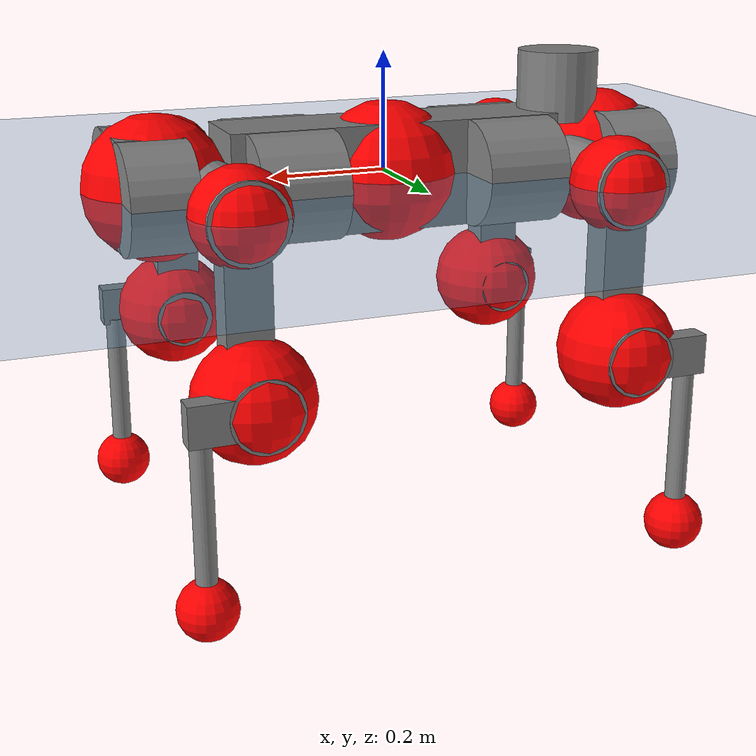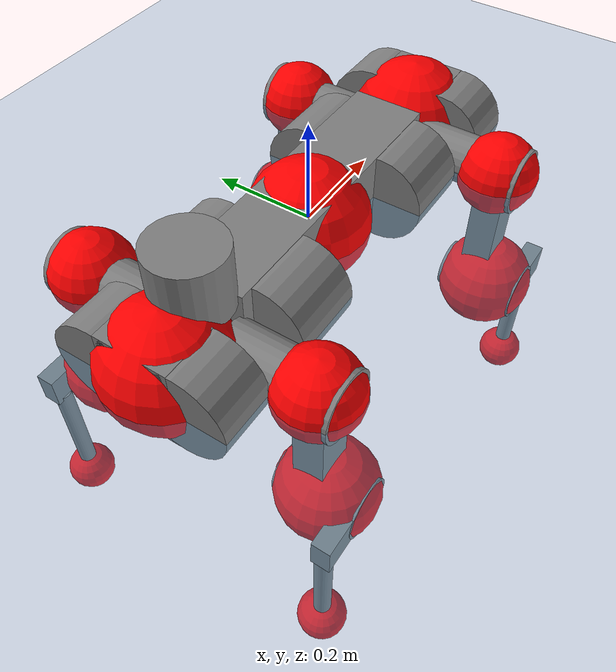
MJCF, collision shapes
<mujoco model="anymal_c">
  <compiler angle="radian" assetdir="assets" balanceinertia="true" inertiafromgeom="false"/>

  <option timestep="0.005" density="1.2" viscosity="2e-05"/>

  <size nkey="1"/>

  <visual>
    <quality shadowsize="8192"/>
    <map shadowclip="0.5"/>
  </visual>

  <default>
    <default class="/">
      <material specular="0" shininess="0.25"/>
      <geom contype="0" conaffinity="0" group="1" solref="-1000 -80"/>
      <site size="0.01 0.005 0.005" group="5"/>
      <general forcelimited="true" forcerange="-80 80" biastype="affine" gainprm="80" biasprm="0 -80 -2"/>
      <default class="anymal_c">
        <joint armature="0.01" damping="0.01" frictionloss="0.1"/>
        <default class="visual">
          <geom type="mesh" group="2"/>
          <default class="visual_zflip"/>
        </default>
        <default class="collision">
          <geom type="cylinder" group="3"/>
          <default class="foot">
            <geom size="0.03 0 0" type="sphere" condim="6" priority="1" friction="0.8 0.02 0.01" solimp="0.015 1 0.03"/>
          </default>
        </default>
      </default>
      <default class="reward_collision_sphere">
        <geom group="5" rgba="1 0 0 1"/>
      </default>
    </default>
  </default>

  <asset>
    <texture type="skybox" colorspace="auto" name="//unnamed_texture_0" builtin="gradient" rgb1="0.95 0.95 0.95" rgb2="0.95 0.95 0.95" width="100" height="600"/>
    <texture type="2d" colorspace="auto" name="texplane" builtin="checker" rgb1="0.345 0.575 0.748" rgb2="0.345 0.575 0.748" markrgb="1 1 1" width="512" height="512"/>
    <texture type="2d" colorspace="linear" name="base" file="base.png"/>
    <texture type="2d" colorspace="linear" name="top_shell" file="top_shell.png"/>
    <texture type="2d" colorspace="linear" name="bottom_shell" file="bottom_shell.png"/>
    <texture type="2d" colorspace="linear" name="remote" file="remote.png"/>
    <texture type="2d" colorspace="linear" name="hatch" file="hatch.png"/>
    <texture type="2d" colorspace="linear" name="handle" file="handle.png"/>
    <texture type="2d" colorspace="linear" name="face" file="face.png"/>
    <texture type="2d" colorspace="linear" name="battery" file="battery.png"/>
    <texture type="2d" colorspace="linear" name="lidar_cage" file="lidar_cage.png"/>
    <texture type="2d" colorspace="linear" name="depth_camera" file="depth_camera.png"/>
    <texture type="2d" colorspace="linear" name="wide_angle_camera" file="wide_angle_camera.png"/>
    <texture type="2d" colorspace="linear" name="lidar" file="lidar.png"/>
    <texture type="2d" colorspace="linear" name="drive" file="drive.png"/>
    <texture type="2d" colorspace="linear" name="hip_l" file="hip_l.png"/>
    <texture type="2d" colorspace="linear" name="shank_l" file="shank_l.png"/>
    <texture type="2d" colorspace="linear" name="foot" file="foot.png"/>
    <texture type="2d" colorspace="linear" name="thigh" file="thigh.png"/>
    <texture type="2d" colorspace="linear" name="shank_r" file="shank_r.png"/>
    <texture type="2d" colorspace="linear" name="hip_r" file="hip_r.png"/>
    <material name="MatPlane" class="/" texture="texplane" texuniform="true" texrepeat="2 2" specular="0.9" shininess="0.5"/>
    <material name="black_plastic" class="/" rgba="0.007 0.007 0.007 1"/>
    <material name="green" class="/" rgba="0.052 0.178 0.033 1"/>
    <material name="red" class="/" rgba="0.178 0.006 0.005 1"/>
    <material name="yellow" class="/" rgba="0.178 0.119 0.006 1"/>
    <material name="lwl" class="/" rgba="0.8 0.8 0.8 1"/>
    <material name="base" class="/" texture="base"/>
    <material name="top_shell" class="/" texture="top_shell"/>
    <material name="bottom_shell" class="/" texture="bottom_shell"/>
    <material name="hip_l" class="/" texture="hip_l"/>
    <material name="thigh" class="/" texture="thigh"/>
    <material name="shank_l" class="/" texture="shank_l"/>
    <material name="foot" class="/" texture="foot"/>
    <material name="hip_r" class="/" texture="hip_r"/>
    <material name="shank" class="/" texture="shank_r"/>
    <material name="hatch" class="/" texture="hatch"/>
    <material name="remote" class="/" texture="remote"/>
    <material name="handle" class="/" texture="handle"/>
    <material name="face" class="/" texture="face"/>
    <material name="depth_camera" class="/" texture="depth_camera"/>
    <material name="wide_angle_camera" class="/" texture="wide_angle_camera"/>
    <material name="battery" class="/" texture="battery"/>
    <material name="lidar_cage" class="/" texture="lidar_cage"/>
    <material name="lidar" class="/" texture="lidar"/>
    <material name="drive" class="/" texture="drive"/>
    <mesh name="base_0" class="/" file="base_0.obj"/>
    <mesh name="base_1" class="/" file="base_1.obj"/>
    <mesh name="base_2" class="/" file="base_2.obj"/>
    <mesh name="base_3" class="/" file="base_3.obj"/>
    <mesh name="base_4" class="/" file="base_4.obj"/>
    <mesh name="base_5" class="/" file="base_5.obj"/>
    <mesh name="top_shell" class="/" file="top_shell.obj"/>
    <mesh name="bottom_shell" class="/" file="bottom_shell.obj"/>
    <mesh name="remote" class="/" file="remote.obj"/>
    <mesh name="handle" class="/" file="handle.obj"/>
    <mesh name="face" class="/" file="face.obj"/>
    <mesh name="wide_angle_camera" class="/" file="wide_angle_camera.obj"/>
    <mesh name="depth_camera" class="/" file="depth_camera.obj"/>
    <mesh name="battery" class="/" file="battery.obj"/>
    <mesh name="lidar_cage" class="/" file="lidar_cage.obj"/>
    <mesh name="lidar" class="/" file="lidar.obj"/>
    <mesh name="drive" class="/" file="drive.obj"/>
    <mesh name="hip_l" class="/" file="hip_l.obj"/>
    <mesh name="thigh" class="/" file="thigh.obj"/>
    <mesh name="shank_l" class="/" file="shank_l.obj"/>
    <mesh name="foot" class="/" file="foot.obj"/>
    <mesh name="hip_r" class="/" file="hip_r.obj"/>
    <mesh name="hatch" class="/" file="hatch.obj"/>
    <mesh name="shank_r" class="/" file="shank_r.obj"/>
  </asset>

  <worldbody>
    <geom name="floor" class="/" size="100 100 0.125" type="plane" group="0" material="MatPlane"/>
    <light name="toplight_shadow" class="/" pos="0 0 5" dir="0.0990148 0.0990148 -0.990148" type="directional" ambient="0.04 0.04 0.04" diffuse="0.55 0.55 0.55" specular="0.12 0.12 0.12"/>
    <light name="toplight_fill" class="/" pos="0 0 5" dir="0.0990148 0.0990148 -0.990148" type="directional" castshadow="false" ambient="0.04 0.04 0.04" diffuse="0.3 0.3 0.3" specular="0.08 0.08 0.08"/>
    <body name="trunk" childclass="anymal_c" pos="-0.00535368 -0.00126988 -0.00106867" quat="0.999998 0.00166099 -0.00012595 0.00112403">
      <inertial pos="0.00686606 0.00103124 0.0449955" quat="0.502876 0.48923 0.504649 0.503089" mass="20.5924" diaginertia="0.349039 1.13884 0.201519"/>
      <joint name="//unnamed_joint_0" type="free" armature="0" damping="0" frictionloss="0"/>
      <geom name="//unnamed_geom_1" class="visual" material="green" mesh="base_0"/>
      <geom name="//unnamed_geom_2" class="visual" material="yellow" mesh="base_1"/>
      <geom name="//unnamed_geom_3" class="visual" material="red" mesh="base_2"/>
      <geom name="//unnamed_geom_4" class="visual" material="black_plastic" mesh="base_3"/>
      <geom name="//unnamed_geom_5" class="visual" material="lwl" mesh="base_4"/>
      <geom name="//unnamed_geom_6" class="visual" material="base" mesh="base_5"/>
      <geom name="trunk_1" class="collision" size="0.288664 0.0696775 0.0895854" type="box"/>
      <geom name="trunk_2" class="collision" size="0.0895854 0.072166" pos="0.19202 0.0788128 0" quat="0.707107 0 0.707107 0"/>
      <geom name="trunk_3" class="collision" size="0.0895854 0.072166" pos="-0.19202 0.0788128 0" quat="0.707107 0 0.707107 0"/>
      <geom name="trunk_4" class="collision" size="0.0895854 0.072166" pos="0.19202 -0.0788128 0" quat="0.707107 0 0.707107 0"/>
      <geom name="trunk_5" class="collision" size="0.0895854 0.072166" pos="-0.19202 -0.0788128 0" quat="0.707107 0 0.707107 0"/>
      <geom name="//unnamed_geom_12" class="visual" material="top_shell" mesh="top_shell"/>
      <geom name="//unnamed_geom_13" class="visual" material="bottom_shell" mesh="bottom_shell"/>
      <geom name="//unnamed_geom_14" class="visual" material="remote" mesh="remote"/>
      <geom name="//unnamed_geom_15" class="visual" material="handle" mesh="handle"/>
      <geom name="//unnamed_geom_16" class="visual" pos="0.365942 0 0" quat="1 0 0 0" material="face" mesh="face"/>
      <geom name="trunk_6" class="collision" size="0.0547466 0.0696775 0.0895854" pos="0.414499 0 0" type="box"/>
      <geom name="//unnamed_geom_18" class="collision" size="0.0895854 0.0547466" pos="0.414499 0.0788128 0" quat="0.707107 0 0.707107 0"/>
      <geom name="//unnamed_geom_19" class="collision" size="0.0895854 0.0547466" pos="0.414499 -0.0788128 0" quat="0.707107 0 0.707107 0"/>
      <geom name="//unnamed_geom_20" class="visual" pos="0.407572 0 -0.0292598" quat="0.965926 0 0.258819 0" material="depth_camera" mesh="depth_camera"/>
      <geom name="//unnamed_geom_21" class="visual" pos="0.452903 0 0.0146321" material="wide_angle_camera" mesh="wide_angle_camera"/>
      <geom name="//unnamed_geom_22" class="visual_zflip" pos="-0.365942 0 0" quat="0 0 0 1" material="face" mesh="face"/>
      <geom name="trunk_7" class="collision" size="0.0547466 0.0696775 0.0895854" pos="-0.414499 0 0" quat="0 0 0 1" type="box"/>
      <geom name="//unnamed_geom_24" class="collision" size="0.0895854 0.0547466" pos="-0.414499 -0.0788128 0" quat="0 -0.707107 0 0.707107"/>
      <geom name="//unnamed_geom_25" class="collision" size="0.0895854 0.0547466" pos="-0.414499 0.0788128 0" quat="0 -0.707107 0 0.707107"/>
      <geom name="//unnamed_geom_26" class="visual" pos="-0.407572 0 -0.0292598" quat="0 -0.258819 0 0.965926" material="depth_camera" mesh="depth_camera"/>
      <geom name="//unnamed_geom_27" class="visual_zflip" pos="-0.452903 0 0.0146321" quat="0 0 0 1" material="wide_angle_camera" mesh="wide_angle_camera"/>
      <geom name="//unnamed_geom_28" class="visual" material="battery" mesh="battery"/>
      <geom name="//unnamed_geom_29" class="visual" pos="0 0.0892792 0.0276756" quat="0.683013 -0.183013 0.183013 0.683013" material="depth_camera" mesh="depth_camera"/>
      <geom name="//unnamed_geom_30" class="visual" pos="0 -0.0892792 0.0276756" quat="0.683013 0.183013 0.183013 -0.683013" material="depth_camera" mesh="depth_camera"/>
      <geom name="//unnamed_geom_31" class="visual" pos="-0.321358 0 0.0718412" quat="1 0 0 0" material="lidar_cage" mesh="lidar_cage"/>
      <geom name="trunk_8" class="collision" size="0.0696775 0.0597236" pos="-0.321358 0 0.130487"/>
      <geom name="//unnamed_geom_33" class="visual" pos="-0.321358 9.5486e-05 0.138991" quat="0.707107 0 0 -0.707107" material="lidar" mesh="lidar"/>
      <geom name="//unnamed_geom_34" class="visual" pos="0.264767 0.117041 2.56105e-09" quat="0.258819 0.965926 0 0" material="drive" mesh="drive"/>
      <geom name="//unnamed_geom_35" class="visual" pos="0.264767 -0.117041 -2.56105e-09" quat="0.258819 -0.965926 0 0" material="drive" mesh="drive"/>
      <geom name="//unnamed_geom_36" class="visual" pos="-0.264767 0.117041 -2.56105e-09" quat="0 0 0.965926 -0.258819" material="drive" mesh="drive"/>
      <geom name="//unnamed_geom_37" class="visual" pos="-0.264767 -0.117041 2.56105e-09" quat="0 0 -0.965926 -0.258819" material="drive" mesh="drive"/>
      <geom name="//unnamed_geom_38" class="visual" pos="0.102411 0 0.0713525" quat="1 0 0 0" material="hatch" mesh="hatch"/>
      <geom name="//unnamed_geom_39" class="reward_collision_sphere" size="0.119447"/>
      <geom name="//unnamed_geom_40" class="reward_collision_sphere" size="0.119447" pos="0.397283 0 0"/>
      <geom name="//unnamed_geom_41" class="reward_collision_sphere" size="0.119447" pos="-0.397283 0 0"/>
      <site name="imu" pos="0.212137 0.0115682 0.0271535" size="0.00995393"/>
      <camera name="track" pos="0 -2.25179 0" quat="0.707107 0.707107 0 0" mode="trackcom"/>
      <camera name="ego_camera" pos="0.397283 0 -0.0390972" quat="-0.5 -0.5 0.5 0.5"/>
      <body name="LF_HIP" pos="0.265621 0.115217 0.00105231" quat="0.258563 0.965994 -0.000178787 -0.00053515">
        <inertial pos="0.0527606 -0.0157297 -0.0102331" quat="-0.124601 0.705295 -0.140847 0.683517" mass="2.79034" diaginertia="0.00301926 0.00925492 0.00293275"/>
        <joint name="LF_HAA" pos="0 0 0" axis="0.99968 -0.0093852 -0.0234701" range="-0.817506 0.445428" armature="0.0103582" damping="0.0141877" frictionloss="0.0965964"/>
        <geom name="//unnamed_geom_42" class="visual" pos="0 0.000150655 -2.47449e-05" quat="0.258819 -0.965926 0 0" material="hip_l" mesh="hip_l"/>
        <geom name="//unnamed_geom_43" class="visual" pos="0.0528828 -0.0672261 -0.0377148" quat="0.183013 -0.683013 0.683013 0.183013" material="drive" mesh="drive"/>
        <geom name="//unnamed_geom_44" class="collision" size="0.0497697 0.0696775" pos="0.0528828 -0.0134655 -0.00674916" quat="-0.353553 -0.612372 0.612372 -0.353553"/>
        <body name="LF_THIGH" pos="0.0539067 -0.0822943 -0.0404509" quat="0.183809 -0.682333 0.683653 0.182359">
          <inertial pos="0.0260641 0.000519709 -0.236312" quat="0.993137 -0.00503892 -0.0802762 0.0849127" mass="3.0366" diaginertia="0.016687 0.0559246 0.00352437"/>
          <joint name="LF_HFE" pos="0 0 0" axis="0.999959 -0.000555352 0.00899964" stiffness="0.027454" range="-3.11927 3.14853" armature="0.00921357" damping="0.0038564" frictionloss="0.0895548"/>
          <geom name="//unnamed_geom_45" class="visual" pos="-0.00483565 -7.61985e-06 0" quat="0.707107 0 0 -0.707107" material="thigh" mesh="thigh"/>
          <geom name="//unnamed_geom_46" class="collision" size="0.0647006 0.0398157" pos="0.0353141 0 0" quat="0.5 0.5 -0.5 -0.5"/>
          <geom name="//unnamed_geom_47" class="collision" size="0.0373272 0.0298618 0.140663" pos="0.0264855 0 -0.138125" quat="0.707107 0 0 -0.707107" type="box"/>
          <geom name="//unnamed_geom_48" class="visual" pos="0.08855 0 -0.278568" quat="1 0 0 0" material="drive" mesh="drive"/>
          <geom name="//unnamed_geom_49" class="collision" size="0.0497697 0.0696775" pos="0.0267504 0 -0.278568" quat="0.707107 0 0.707107 0"/>
          <geom name="//unnamed_geom_50" class="reward_collision_sphere" size="0.0796314" pos="0.0220713 0 0"/>
          <body name="LF_SHANK" pos="0.0912366 0.00385773 -0.280233" quat="1 0.000114526 4.58487e-05 -1.34504e-05">
            <inertial pos="0.0072307 -0.0680231 -0.0795925" quat="0.993342 -0.113666 0.00345861 -0.0184382" mass="0.575937" diaginertia="0.00506224 0.0154366 0.000954122"/>
            <joint name="LF_KFE" pos="0 0 0" axis="0.999946 0.00460333 -0.00935307" range="-3.06282 3.15835" armature="0.0102949" damping="0.0181193" frictionloss="0.102629"/>
            <geom name="//unnamed_geom_51" class="visual" pos="-0.0015768 -0.00840757 0" quat="0.707107 0 0 -0.707107" material="shank_l" mesh="shank_l"/>
            <geom name="LF_kfe_act" class="collision" size="0.0597236 0.0199079" pos="0.017657 0 0" quat="0.5 0.5 -0.5 -0.5"/>
            <geom name="//unnamed_geom_53" class="collision" size="0.0572341 0.0335945 0.0189125" pos="0.017657 -0.0647379 0" quat="0.5 0.5 -0.5 -0.5" type="box"/>
            <geom name="//unnamed_geom_54" class="visual" pos="0.0115216 -0.101732 -0.330342" quat="0.382683 0 0 -0.92388" material="foot" mesh="foot"/>
            <geom name="LF_calf" class="collision" size="0.0174194 0.140601" pos="0.0115212 -0.0990226 -0.165171" quat="0.707107 0 0 -0.707107"/>
            <geom name="LF_foot" class="foot" size="0.0209317" pos="0.0115212 -0.0990226 -0.30835" quat="0.707107 0 0 -0.707107"/>
            <geom name="//unnamed_geom_57" class="reward_collision_sphere" size="0.0995393" pos="-0.0441426 0 0"/>
            <geom name="//unnamed_geom_58" class="reward_collision_sphere" size="0.0497697" pos="0.0115212 -0.0990226 -0.30835"/>
            <site name="LF_foot" class="foot" pos="0.0115212 -0.0990226 -0.30835" quat="0.707107 0 0 -0.707107" size="0.00995393"/>
          </body>
        </body>
      </body>
      <body name="RF_HIP" pos="0.267844 -0.116727 0.00411937" quat="0.258959 -0.965888 0.000632142 -0.000692407">
        <inertial pos="0.0508203 0.0205591 -0.00741677" quat="0.128786 0.676253 0.138685 0.711943" mass="2.77649" diaginertia="0.00319381 0.0088797 0.00294382"/>
        <joint name="RF_HAA" pos="0 0 0" axis="0.999998 0.00101533 -0.00185081" range="-0.451098 0.724761" armature="0.0110219" damping="0.0188798" frictionloss="0.11334"/>
        <geom name="//unnamed_geom_59" class="visual" pos="0 -0.000150654 -2.47448e-05" quat="0.258819 0.965926 0 0" material="hip_r" mesh="hip_r"/>
        <geom name="//unnamed_geom_60" class="visual" pos="0.0528828 0.0672261 -0.0377148" quat="0.183013 0.683013 0.683013 -0.183013" material="drive" mesh="drive"/>
        <geom name="//unnamed_geom_61" class="collision" size="0.0497697 0.0696775" pos="0.0528828 0.0134655 -0.00674916" quat="-0.353553 0.612372 0.612372 0.353553"/>
        <body name="RF_THIGH" pos="0.0523654 0.0870653 -0.0421847" quat="0.183343 0.682782 0.683065 -0.183351">
          <inertial pos="0.0275959 0.00175432 -0.241576" quat="0.992843 -0.00537901 -0.0782161 0.0900881" mass="2.98206" diaginertia="0.0157012 0.0519929 0.00357004"/>
          <joint name="RF_HFE" pos="0 0 0" axis="0.999992 -0.00338546 0.0019306" stiffness="0.00224242" range="-3.1893 3.09548" armature="0.00979194" damping="0.000858049" frictionloss="0.106141"/>
          <geom name="//unnamed_geom_62" class="visual" pos="-0.00483565 -7.61985e-06 0" quat="0.707107 0 0 -0.707107" material="thigh" mesh="thigh"/>
          <geom name="//unnamed_geom_63" class="collision" size="0.0647006 0.0398157" pos="0.0353141 0 0" quat="0.5 0.5 0.5 0.5"/>
          <geom name="//unnamed_geom_64" class="collision" size="0.0373272 0.0298618 0.140663" pos="0.0264855 0 -0.138125" quat="0.707107 0 0 0.707107" type="box"/>
          <geom name="//unnamed_geom_65" class="visual" pos="0.08855 0 -0.278568" quat="1 0 0 0" material="drive" mesh="drive"/>
          <geom name="//unnamed_geom_66" class="collision" size="0.0497697 0.0696775" pos="0.0267504 0 -0.278568" quat="0.707107 0 0.707107 0"/>
          <geom name="//unnamed_geom_67" class="reward_collision_sphere" size="0.0796314" pos="0.0220713 0 0"/>
          <body name="RF_SHANK" pos="0.0896173 0.00221108 -0.280867" quat="1 5.69529e-06 1.6062e-07 -2.17996e-05">
            <inertial pos="0.00589537 0.0700698 -0.0790096" quat="0.993846 0.109651 -0.00996928 0.0121127" mass="0.578476" diaginertia="0.00547626 0.0168236 0.00101982"/>
            <joint name="RF_KFE" pos="0 0 0" axis="0.999754 0.00214659 -0.0220772" stiffness="0.0126524" range="-3.09267 3.1171" armature="0.00886219" damping="0" frictionloss="0.0913607"/>
            <geom name="//unnamed_geom_68" class="visual" pos="-0.00157679 0.00840755 0" quat="0.707107 0 0 0.707107" material="shank" mesh="shank_r"/>
            <geom name="RF_kfe_act" class="collision" size="0.0597236 0.0199079" pos="0.017657 0 0" quat="0.5 0.5 0.5 0.5"/>
            <geom name="//unnamed_geom_70" class="collision" size="0.0572341 0.0335945 0.0189125" pos="0.017657 0.0647379 0" quat="0.5 0.5 0.5 0.5" type="box"/>
            <geom name="//unnamed_geom_71" class="visual" pos="0.0115208 0.101732 -0.330342" quat="0.382683 0 0 0.92388" material="foot" mesh="foot"/>
            <geom name="RF_calf" class="collision" size="0.0174194 0.140601" pos="0.0115212 0.0990226 -0.165171" quat="0.707107 0 0 0.707107"/>
            <geom name="RF_foot" class="foot" size="0.0261187" pos="0.0115212 0.0990226 -0.30835" quat="0.707107 0 0 0.707107"/>
            <geom name="//unnamed_geom_74" class="reward_collision_sphere" size="0.0995393" pos="-0.0441426 0 0"/>
            <geom name="//unnamed_geom_75" class="reward_collision_sphere" size="0.0497697" pos="0.0115212 0.0990226 -0.30835"/>
            <site name="RF_foot" class="foot" pos="0.0115212 0.0990226 -0.30835" quat="0.707107 0 0 0.707107" size="0.00995393"/>
          </body>
        </body>
      </body>
      <body name="LH_HIP" pos="-0.263042 0.11732 0.00133666" quat="-0.00010989 0.00020227 0.965921 -0.258838">
        <inertial pos="0.0519669 0.0126861 -0.00666669" quat="0.15011 0.691197 0.140082 0.692885" mass="2.67785" diaginertia="0.00330639 0.00917744 0.0028872"/>
        <joint name="LH_HAA" pos="0 0 0" axis="0.999991 0.00164499 -0.0038456" range="-0.540819 0.721372" armature="0.0110445" damping="0" frictionloss="0.0825754"/>
        <geom name="//unnamed_geom_76" class="visual" pos="0 -0.000150654 -2.47448e-05" quat="-0.258819 -0.965926 0 0" material="hip_r" mesh="hip_r"/>
        <geom name="//unnamed_geom_77" class="visual" pos="0.0528828 0.0672261 -0.0377148" quat="0.183013 0.683013 0.683013 -0.183013" material="drive" mesh="drive"/>
        <geom name="//unnamed_geom_78" class="collision" size="0.0497697 0.0696775" pos="0.0528828 0.0134655 -0.00674916" quat="-0.353553 0.612372 0.612372 0.353553"/>
        <body name="LH_THIGH" pos="0.0511451 0.0850061 -0.0442384" quat="0.184167 0.683341 0.682577 -0.182255">
          <inertial pos="0.0276218 0.00017748 -0.237565" quat="0.992744 0.00433577 -0.0828203 0.0870664" mass="2.94116" diaginertia="0.0168412 0.0573752 0.00381605"/>
          <joint name="LH_HFE" pos="0 0 0" axis="0.999999 -0.00123401 -0.000399398" range="-3.12495 3.16551" armature="0.00916678" damping="0.00402017" frictionloss="0.101279"/>
          <geom name="//unnamed_geom_79" class="visual" pos="-0.00483565 -7.61985e-06 0" quat="0.707107 0 0 -0.707107" material="thigh" mesh="thigh"/>
          <geom name="//unnamed_geom_80" class="collision" size="0.0647006 0.0398157" pos="0.0353141 0 0" quat="0.5 0.5 -0.5 -0.5"/>
          <geom name="//unnamed_geom_81" class="collision" size="0.0373272 0.0298618 0.140663" pos="0.0264855 0 -0.138125" quat="0.707107 0 0 -0.707107" type="box"/>
          <geom name="//unnamed_geom_82" class="visual" pos="0.08855 0 -0.278568" quat="1 0 0 0" material="drive" mesh="drive"/>
          <geom name="//unnamed_geom_83" class="collision" size="0.0497697 0.0696775" pos="0.0267504 0 -0.278568" quat="0.707107 0 0.707107 0"/>
          <geom name="//unnamed_geom_84" class="reward_collision_sphere" size="0.0796314" pos="0.0220713 0 0"/>
          <body name="LH_SHANK" pos="0.0886043 -0.000627206 -0.27473" quat="1 -0.000247944 0.000203372 0.000887413">
            <inertial pos="0.00280204 0.0639878 -0.0776638" quat="0.992631 0.118633 -0.00183769 0.024625" mass="0.597307" diaginertia="0.00556446 0.0173598 0.00109004"/>
            <joint name="LH_KFE" pos="0 0 0" axis="0.999945 0.00815605 -0.00659655" stiffness="0.0255614" range="-3.13676 3.16528" armature="0.010088" damping="0.00990345" frictionloss="0.076244"/>
            <geom name="//unnamed_geom_85" class="visual" pos="-0.00157679 0.00840755 0" quat="-0.707107 0 0 -0.707107" material="shank" mesh="shank_r"/>
            <geom name="LH_kfe_act" class="collision" size="0.0597236 0.0199079" pos="0.017657 0 0" quat="0.5 0.5 -0.5 -0.5"/>
            <geom name="//unnamed_geom_87" class="collision" size="0.0572341 0.0335945 0.0189125" pos="0.017657 0.0647379 0" quat="0.5 0.5 -0.5 -0.5" type="box"/>
            <geom name="//unnamed_geom_88" class="visual" pos="0.0115208 0.101732 -0.330342" quat="-0.382683 0 0 -0.92388" material="foot" mesh="foot"/>
            <geom name="LH_calf" class="collision" size="0.0174194 0.140601" pos="0.0115212 0.0990226 -0.165171" quat="0.707107 0 0 -0.707107"/>
            <geom name="LH_foot" class="foot" size="0.0303593" pos="0.0115212 0.0990226 -0.30835" quat="0.707107 0 0 -0.707107"/>
            <geom name="//unnamed_geom_91" class="reward_collision_sphere" size="0.0995393" pos="-0.0441426 0 0"/>
            <geom name="//unnamed_geom_92" class="reward_collision_sphere" size="0.0497697" pos="0.0115212 0.0990226 -0.30835"/>
            <site name="LH_foot" class="foot" pos="0.0115212 0.0990226 -0.30835" quat="0.707107 0 0 -0.707107" size="0.00995393"/>
          </body>
        </body>
      </body>
      <body name="RH_HIP" pos="-0.262773 -0.117145 0.00214844" quat="-0.00213835 -0.000548542 -0.965977 -0.258618">
        <inertial pos="0.0452615 -0.0187409 -0.00348749" quat="-0.132029 0.70735 -0.136652 0.680846" mass="2.7349" diaginertia="0.00312913 0.0087953 0.00285545"/>
        <joint name="RH_HAA" pos="0 0 0" axis="0.999678 0.00900895 -0.0237219" range="-0.682911 0.5425" armature="0.00937953" damping="0.00425159" frictionloss="0.111885"/>
        <geom name="//unnamed_geom_93" class="visual" pos="0 0.000150655 -2.47449e-05" quat="-0.258819 0.965926 0 0" material="hip_l" mesh="hip_l"/>
        <geom name="//unnamed_geom_94" class="visual" pos="0.0528828 -0.0672261 -0.0377148" quat="-0.183013 0.683013 -0.683013 -0.183013" material="drive" mesh="drive"/>
        <geom name="//unnamed_geom_95" class="collision" size="0.0497697 0.0696775" pos="0.0528828 -0.0134655 -0.00674916" quat="0.353553 0.612372 -0.612372 0.353553"/>
        <body name="RH_THIGH" pos="0.0504098 -0.0782399 -0.0363515" quat="-0.183045 0.682978 -0.68301 -0.183118">
          <inertial pos="0.0255356 -0.000955697 -0.240326" quat="0.993337 -0.00692169 -0.0781685 0.0843946" mass="3.14546" diaginertia="0.0157779 0.053836 0.00370676"/>
          <joint name="RH_HFE" pos="0 0 0" axis="0.999935 0.00674036 0.0091883" stiffness="0.00113063" range="-3.13857 3.08277" armature="0.00902029" damping="0.00587869" frictionloss="0.111927"/>
          <geom name="//unnamed_geom_96" class="visual" pos="-0.00483565 -7.61985e-06 0" quat="0.707107 0 0 -0.707107" material="thigh" mesh="thigh"/>
          <geom name="//unnamed_geom_97" class="collision" size="0.0647006 0.0398157" pos="0.0353141 0 0" quat="0.5 0.5 0.5 0.5"/>
          <geom name="//unnamed_geom_98" class="collision" size="0.0373272 0.0298618 0.140663" pos="0.0264855 0 -0.138125" quat="0.707107 0 0 0.707107" type="box"/>
          <geom name="//unnamed_geom_99" class="visual" pos="0.08855 0 -0.278568" quat="1 0 0 0" material="drive" mesh="drive"/>
          <geom name="//unnamed_geom_100" class="collision" size="0.0497697 0.0696775" pos="0.0267504 0 -0.278568" quat="0.707107 0 0.707107 0"/>
          <geom name="//unnamed_geom_101" class="reward_collision_sphere" size="0.0796314" pos="0.0220713 0 0"/>
          <body name="RH_SHANK" pos="0.0874074 0.00275339 -0.276758" quat="1 -1.05987e-05 -1.76763e-06 -9.07552e-07">
            <inertial pos="0.00619909 -0.0664775 -0.0789752" quat="0.992882 -0.116155 -0.0032179 -0.0261492" mass="0.57507" diaginertia="0.00561707 0.0168407 0.000975983"/>
            <joint name="RH_KFE" pos="0 0 0" axis="0.999863 0.0109116 0.0124202" range="-3.16407 3.14772" armature="0.00879095" damping="0" frictionloss="0.087415"/>
            <geom name="//unnamed_geom_102" class="visual" pos="-0.0015768 -0.00840757 0" quat="0.707107 0 0 -0.707107" material="shank_l" mesh="shank_l"/>
            <geom name="RH_kfe_act" class="collision" size="0.0597236 0.0199079" pos="0.017657 0 0" quat="0.5 0.5 0.5 0.5"/>
            <geom name="//unnamed_geom_104" class="collision" size="0.0572341 0.0335945 0.0189125" pos="0.017657 -0.0647379 0" quat="0.5 0.5 0.5 0.5" type="box"/>
            <geom name="//unnamed_geom_105" class="visual" pos="0.0115216 -0.101732 -0.330342" quat="0.382683 0 0 -0.92388" material="foot" mesh="foot"/>
            <geom name="RH_calf" class="collision" size="0.0174194 0.140601" pos="0.0115212 -0.0990226 -0.165171" quat="0.707107 0 0 0.707107"/>
            <geom name="RH_foot" class="foot" size="0.0334094" pos="0.0115212 -0.0990226 -0.30835" quat="0.707107 0 0 0.707107"/>
            <geom name="//unnamed_geom_108" class="reward_collision_sphere" size="0.0995393" pos="-0.0441426 0 0"/>
            <geom name="//unnamed_geom_109" class="reward_collision_sphere" size="0.0497697" pos="0.0115212 -0.0990226 -0.30835"/>
            <site name="RH_foot" class="foot" pos="0.0115212 -0.0990226 -0.30835" quat="0.707107 0 0 0.707107" size="0.00995393"/>
          </body>
        </body>
      </body>
    </body>
  </worldbody>

  <contact>
    <pair class="/" geom1="floor" geom2="LF_foot" name="//unnamed_contact_0"/>
    <pair class="/" geom1="floor" geom2="RF_foot" name="//unnamed_contact_1"/>
    <pair class="/" geom1="floor" geom2="LH_foot" name="//unnamed_contact_2"/>
    <pair class="/" geom1="floor" geom2="RH_foot" name="//unnamed_contact_3"/>
  </contact>

  <actuator>
    <general name="LF_HAA" class="/" joint="LF_HAA" forcerange="-79.9039 79.9039" gainprm="80.7361" biasprm="0 -80.7361 -2.14548"/>
    <general name="LF_HFE" class="/" joint="LF_HFE" forcerange="-77.9109 77.9109" gainprm="80.7361" biasprm="0 -80.7361 -2.14548"/>
    <general name="LF_KFE" class="/" joint="LF_KFE" forcerange="-75.0909 75.0909" gainprm="80.7361" biasprm="0 -80.7361 -2.14548"/>
    <general name="RF_HAA" class="/" joint="RF_HAA" forcerange="-81.2176 81.2176" gainprm="80.7361" biasprm="0 -80.7361 -2.14548"/>
    <general name="RF_HFE" class="/" joint="RF_HFE" forcerange="-82.446 82.446" gainprm="80.7361" biasprm="0 -80.7361 -2.14548"/>
    <general name="RF_KFE" class="/" joint="RF_KFE" forcerange="-82.0518 82.0518" gainprm="80.7361" biasprm="0 -80.7361 -2.14548"/>
    <general name="LH_HAA" class="/" joint="LH_HAA" forcerange="-66.4496 66.4496" gainprm="80.7361" biasprm="0 -80.7361 -2.14548"/>
    <general name="LH_HFE" class="/" joint="LH_HFE" forcerange="-77.4648 77.4648" gainprm="80.7361" biasprm="0 -80.7361 -2.14548"/>
    <general name="LH_KFE" class="/" joint="LH_KFE" forcerange="-92.7731 92.7731" gainprm="80.7361" biasprm="0 -80.7361 -2.14548"/>
    <general name="RH_HAA" class="/" joint="RH_HAA" forcerange="-82.0428 82.0428" gainprm="80.7361" biasprm="0 -80.7361 -2.14548"/>
    <general name="RH_HFE" class="/" joint="RH_HFE" forcerange="-67.736 67.736" gainprm="80.7361" biasprm="0 -80.7361 -2.14548"/>
    <general name="RH_KFE" class="/" joint="RH_KFE" forcerange="-86.618 86.618" gainprm="80.7361" biasprm="0 -80.7361 -2.14548"/>
  </actuator>

  <sensor>
    <gyro site="imu" name="imu_angular_velocity"/>
    <velocimeter site="imu" name="imu_linear_velocity"/>
    <framelinvel objtype="site" objname="LF_foot" name="LF_foot_global_linear_velocity"/>
    <framelinvel objtype="site" objname="RF_foot" name="RF_foot_global_linear_velocity"/>
    <framelinvel objtype="site" objname="LH_foot" name="LH_foot_global_linear_velocity"/>
    <framelinvel objtype="site" objname="RH_foot" name="RH_foot_global_linear_velocity"/>
  </sensor>

  <keyframe>
    <key name="home" qpos="0 0 0.55 1 0 0 0 0 0.4 -0.8 0 -0.4 0.8 0 -0.4 0.8 0 0.4 -0.8"/>
  </keyframe>
</mujoco>
